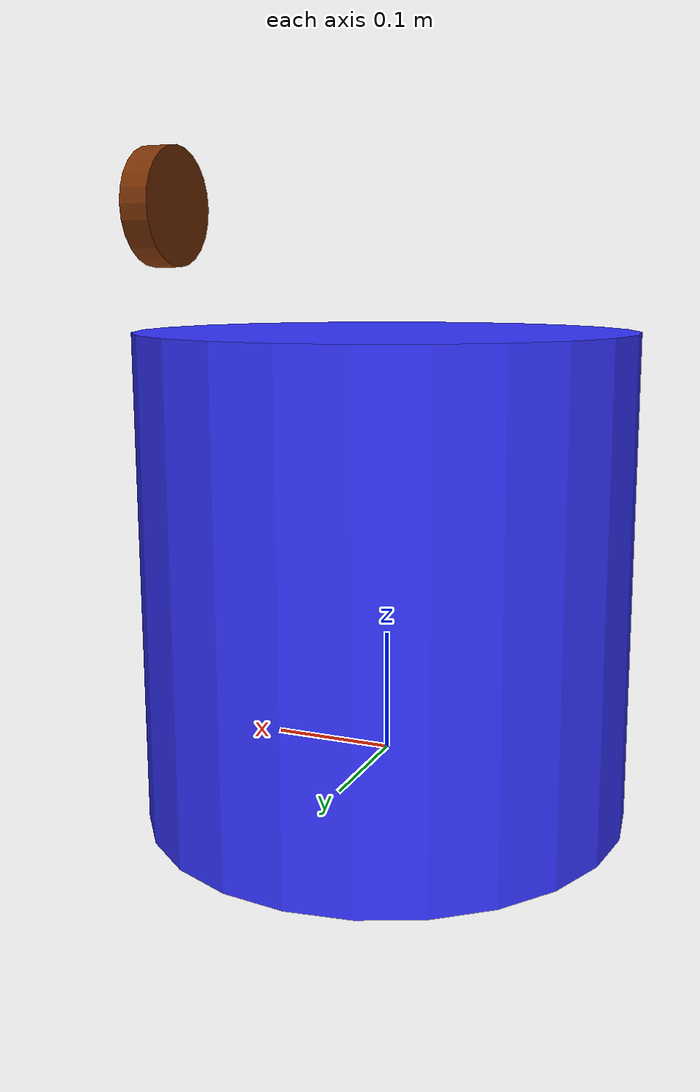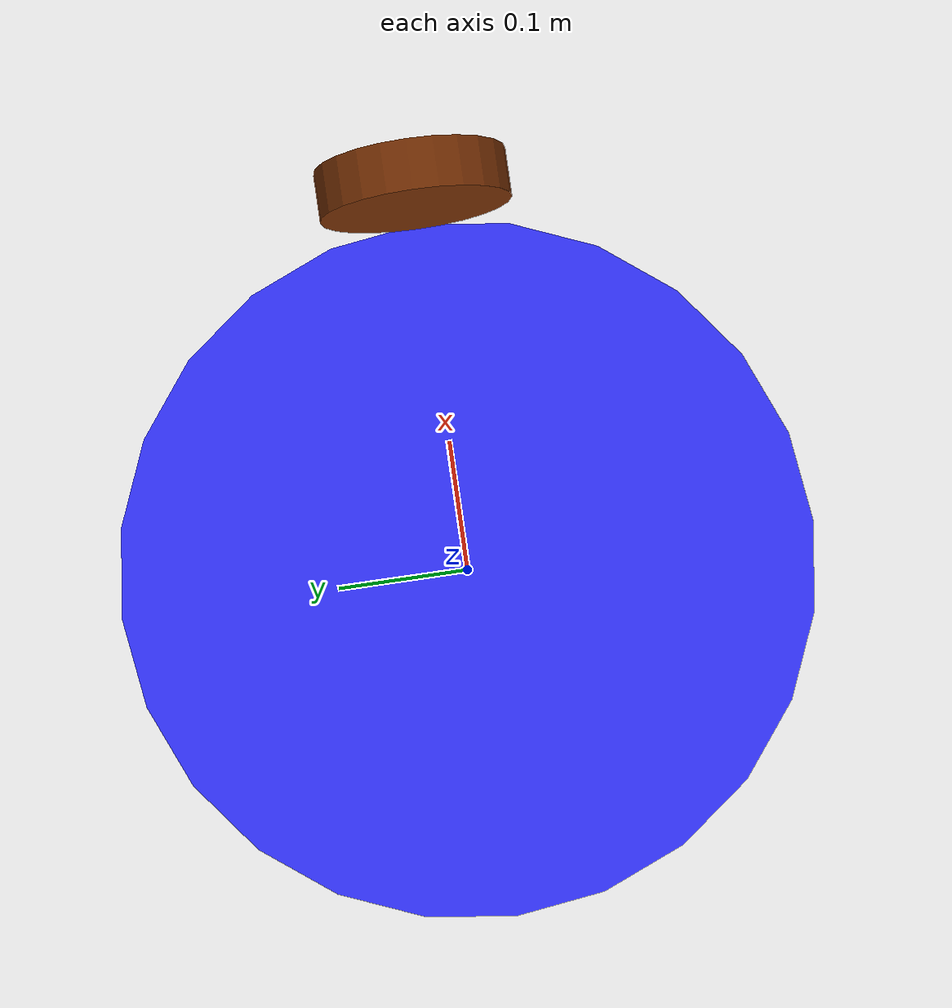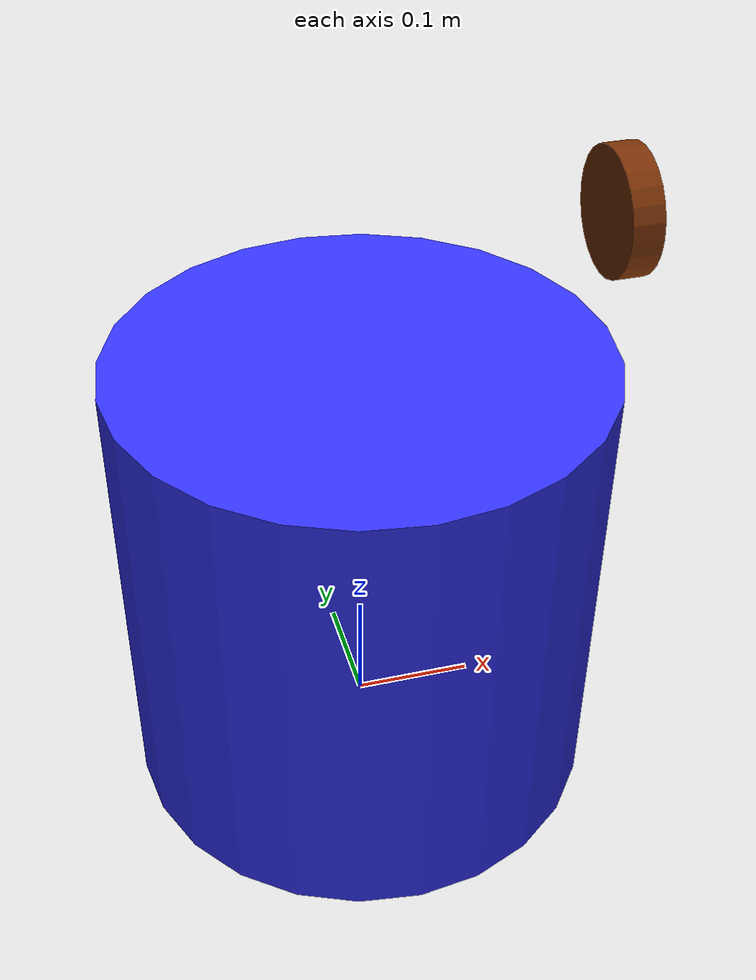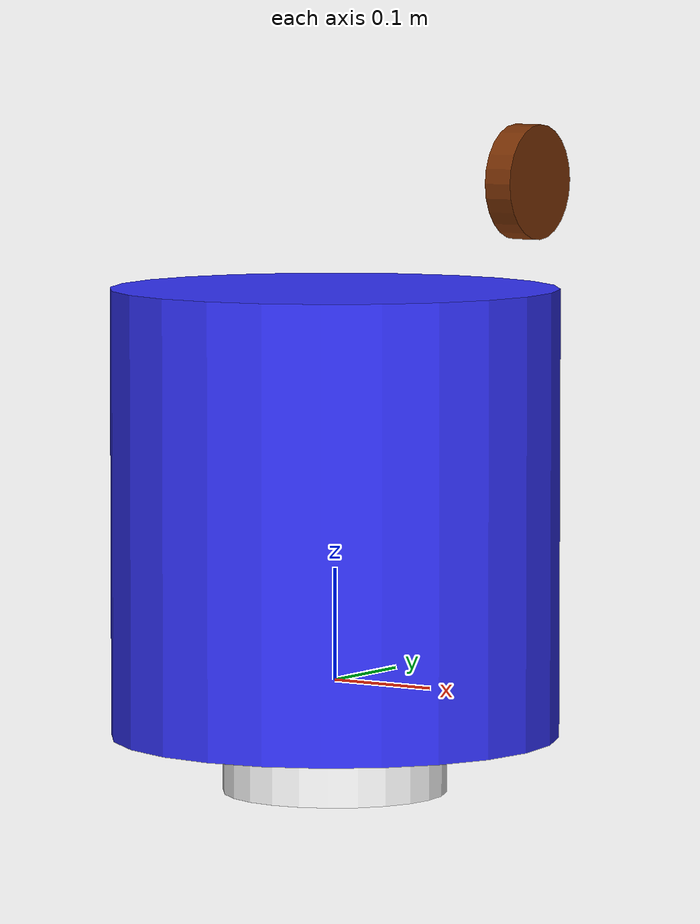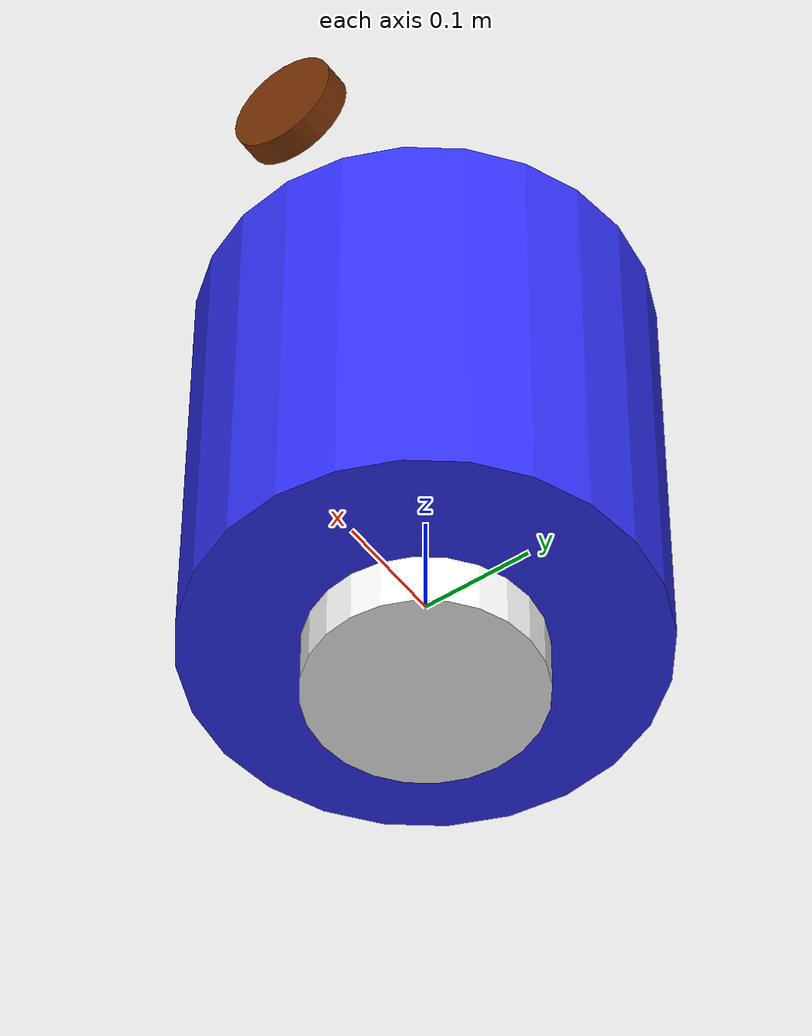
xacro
<?xml version="1.0"?>
<robot xmlns:xacro="http://www.ros.org/wiki/xacro">
    <xacro:include filename="materials.xacro" />

    <!-- Base Link -->
    <link name="base_link"></link>

    <!-- Floor Plate -->
    <joint name="floor_plate_joint" type="fixed">
        <parent link="base_link" />
        <child link="floor_plate" />
        <origin xyz="0 0 -0.1"/>
    </joint>

    <link name="floor_plate">
        <visual>
            <origin xyz="0 0 0.025"/>
            <geometry>
                <cylinder length="0.05" radius="0.1" />
            </geometry>
            <material name="white" />
        </visual>
        <collision>
            <origin xyz="0 0 0.025"/>
            <geometry>
                <cylinder length="0.05" radius="0.1" />
            </geometry>
        </collision>
    </link>

    <!-- Body -->
    <joint name="body_joint" type="continuous">
        <parent link="base_link"/>
        <child link="body"/>
        <axis xyz="0 0 1"/>
    </joint>

    <link name="body">
        <visual>
            <origin xyz="0 0 0.15"/>
            <geometry>
                <cylinder radius="0.2" length="0.4"/>
            </geometry>
            <material name="blue"/>
        </visual>
        <collision>
            <origin xyz="0 0 0.15"/>
            <geometry>
                <cylinder radius="0.2" length="0.4"/>
            </geometry>
        </collision>
    </link>

    <xacro:include filename="arm.xacro" />
</robot>

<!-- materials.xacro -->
<robot xmlns:xacro="http://www.ros.org/wiki/xacro">
    <material name="white">
        <color rgba="1 1 1 1" />
    </material>

    <material name="brown">
        <color rgba="0.47 0.19 0.02 1" />
    </material>

    <material name="orange">
        <color rgba="1 0.3 0.1 1" />
    </material>

    <material name="blue">
        <color rgba="0.2 0.2 1 1" />
    </material>

    <material name="black">
        <color rgba="0 0 0 1" />
    </material>
</robot>

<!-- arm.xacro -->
<robot xmlns:xacro="http://www.ros.org/wiki/xacro">

    <!-- Arm base -->
    <joint name="arm_base_joint" type="revolute">
        <parent link="body" />
        <child link="arm_base" />
        <limit effort="1000.0" lower="${pi/-2}" upper="${pi/2}" velocity="0.5" />
        <origin xyz="0.2 0 0.45" rpy="0 ${pi/2} 0"/>
        <axis xyz="0 0 1" />
    </joint>

    <link name="arm_base">
        <visual>
            <geometry>
                <cylinder length="0.025" radius="0.05" />
            </geometry>
            <material name="brown" />
        </visual>
    </link>

</robot>
